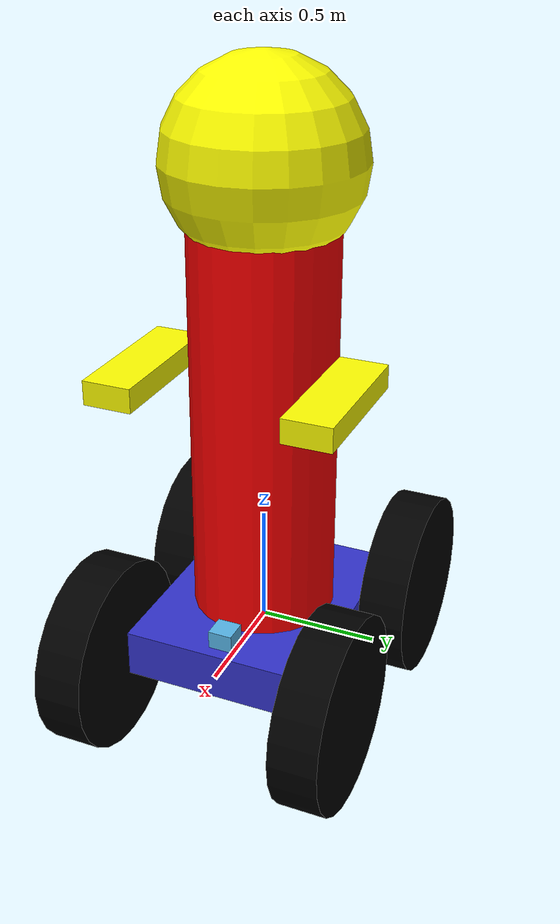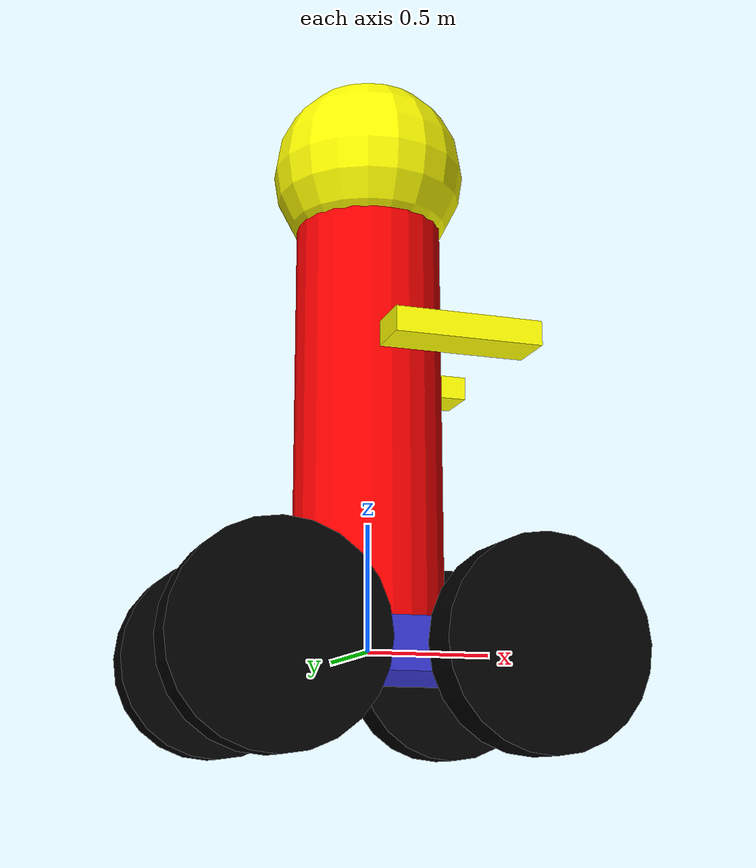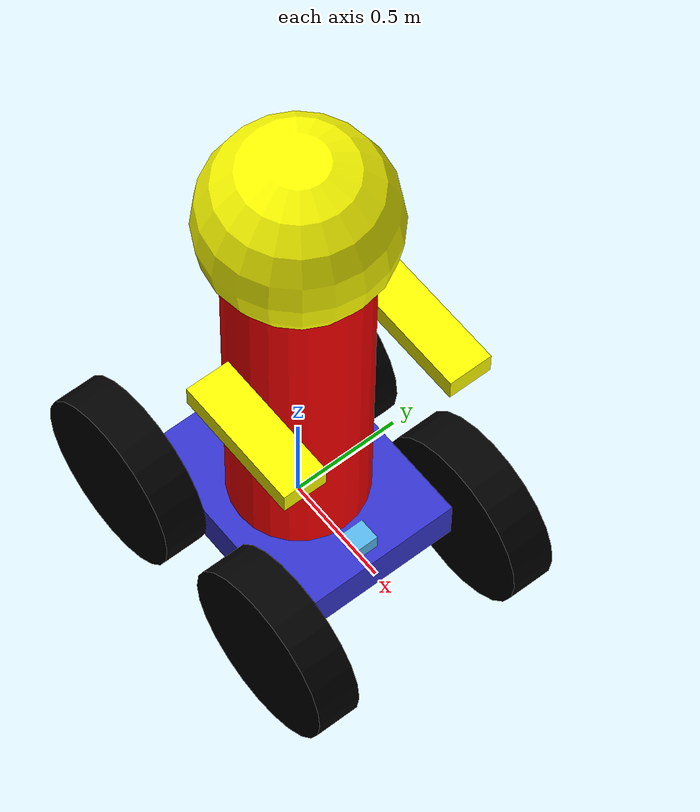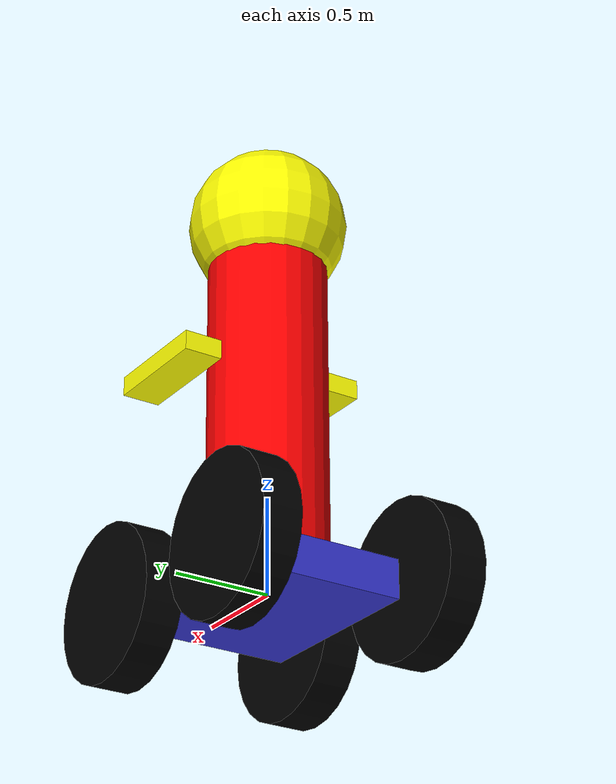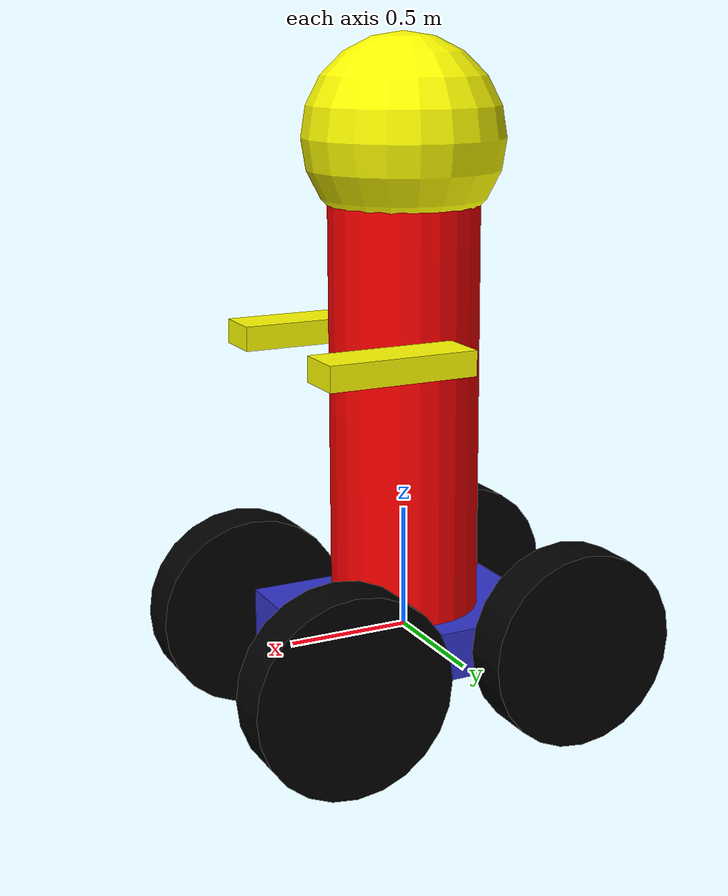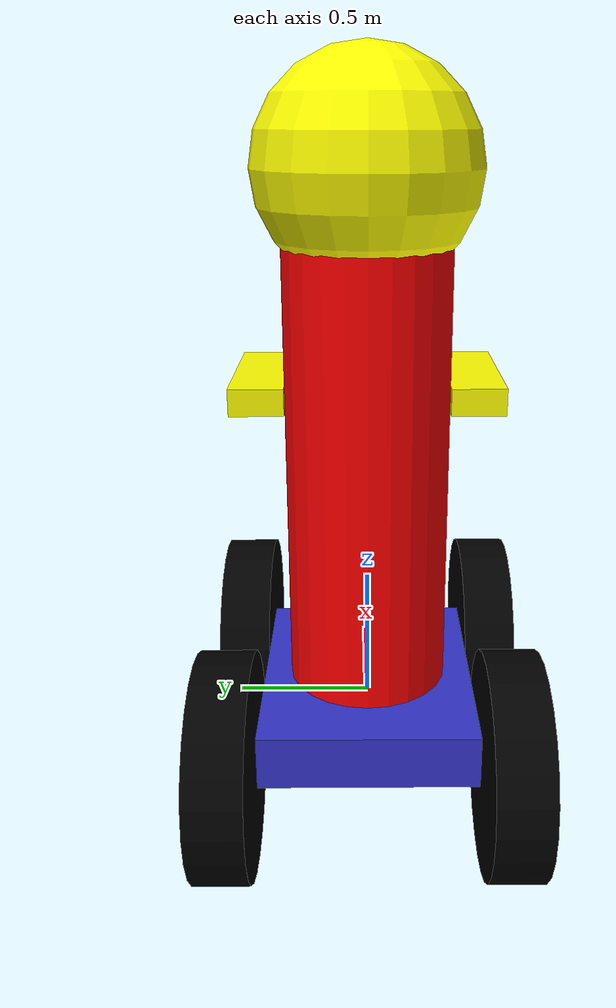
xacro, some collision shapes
<robot name="robot_hanchenhao" xmlns:xacro="http://www.ros.org/wiki/xacro">

  <xacro:property name="PI" value="3.1415926535897931"/>
  <xacro:property name="height3" value="0.15" /> <!-- Link 3 -->
  <xacro:property name="axel_offset" value="0.05" /> <!-- Space btw top of beam and the each joint -->
  <xacro:property name="update_rate" value="20" />
  <!-- Import all Gazebo-customization elements, including Gazebo colors -->
  <xacro:include filename="$(find gazebo_ros_my_robot_description)/urdf/my_robot_plugin.gazebo" />

  <link name="base_link">

    <collision>
      <geometry>
        <box size="1.0 0.8 0.2"/>
      </geometry>
    </collision>

    <visual>
      <geometry>
        <box size="1.0 0.8 0.2"/>
      </geometry>
      <material name="darkblue">
        <color rgba=".2 .2 .8 1"/>
      </material>
    </visual>

    <inertial>
      <mass value="1"/>
      <inertia
        ixx="1.0" ixy="0.0" ixz="0.0"
        iyy="1.0" iyz="0.0"
        izz="1.0"/>
    </inertial>

  </link>

  <gazebo reference="base_link">
    <material>Gazebo/Blue</material>
  </gazebo>

  <link name="body_link">

    <collision>
      <geometry>
        <cylinder length="1.8" radius="0.30"/>
      </geometry>
    </collision>

    <visual>
      <geometry>
        <cylinder length="1.8" radius="0.30"/>
      </geometry>
      <material name="red">
        <color rgba="1 0 0 1"/>
      </material>
    </visual>

    <inertial>
      <mass value="1"/>
      <inertia
        ixx="1.0" ixy="0.0" ixz="0.0"
        iyy="1.0" iyz="0.0"
        izz="1.0"/>
    </inertial>

  </link>

  <gazebo reference="body_link">
    <material>Gazebo/Red</material>
  </gazebo>

  <link name="wheel_left_link">

    <collision>
      <origin xyz="0 0 0" rpy="1.57 0 0" />
      <geometry>
        <cylinder length="0.2" radius="0.40"/>
      </geometry>

      <surface>
      <friction>
                <ode>
                  <mu>0.8</mu>
                  <mu2>0.8</mu2>
                </ode>
              </friction>
      </surface>

    </collision>

    <visual>
      <origin xyz="0 0 0" rpy="1.57 0 0" />
      <geometry>
        <cylinder length="0.2" radius="0.40"/>
      </geometry>
      <material name="black">
        <color rgba="0 0 0 1"/>
      </material>
    </visual>

    <inertial>
      <origin xyz="0 0 0" rpy="1.57 0 0"/>
      <mass value="1"/>
      <inertia
        ixx="1.0" ixy="0.0" ixz="0.0"
        iyy="1.0" iyz="0.0"
        izz="1.0"/>
    </inertial>

  </link>

  <gazebo reference="wheel_left_link">
    <material>Gazebo/Black</material>
  </gazebo>

  <link name="wheel_right_link" >

    <collision>
      <origin xyz="0 0 0" rpy="1.57 0 0" />
      <geometry>
        <cylinder length="0.2" radius="0.40"/>
      </geometry>

      <surface>
      <friction>
                <ode>
                  <mu>0.8</mu>
                  <mu2>0.8</mu2>
                </ode>
              </friction>
      </surface>

    </collision>

    <visual>
      <origin xyz="0 0 0" rpy="1.57 0 0" />
      <geometry>
        <cylinder length="0.2" radius="0.40"/>
      </geometry>
      <material name="black">
        <color rgba="0 0 0 1"/>
      </material>
    </visual>

    <inertial>
      <origin xyz="0 0 0" rpy="1.57 0 0"/>
      <mass value="1"/>
      <inertia
        ixx="1.0" ixy="0.0" ixz="0.0"
        iyy="1.0" iyz="0.0"
        izz="1.0"/>
    </inertial>

  </link>

  <gazebo reference="wheel_right_link">
    <material>Gazebo/Black</material>
  </gazebo>

    <gazebo reference="body_link">
    <material>Gazebo/Red</material>
  </gazebo>

  <link name="bwheel_left_link">

    <collision>
      <origin xyz="0 0 0" rpy="1.57 0 0" />
      <geometry>
        <cylinder length="0.2" radius="0.40"/>
      </geometry>

      <surface>
      <friction>
                <ode>
                  <mu>0.8</mu>
                  <mu2>0.8</mu2>
                </ode>
              </friction>
      </surface>

    </collision>

    <visual>
      <origin xyz="0 0 0" rpy="1.57 0 0" />
      <geometry>
        <cylinder length="0.2" radius="0.40"/>
      </geometry>
      <material name="black">
        <color rgba="0 0 0 1"/>
      </material>
    </visual>

    <inertial>
      <origin xyz="0 0 0" rpy="1.57 0 0"/>
      <mass value="1"/>
      <inertia
        ixx="1.0" ixy="0.0" ixz="0.0"
        iyy="1.0" iyz="0.0"
        izz="1.0"/>
    </inertial>

  </link>

  <gazebo reference="bwheel_left_link">
    <material>Gazebo/Black</material>
  </gazebo>

  <link name="bwheel_right_link" >

    <collision>
      <origin xyz="0 0 0" rpy="1.57 0 0" />
      <geometry>
        <cylinder length="0.2" radius="0.40"/>
      </geometry>

      <surface>
      <friction>
                <ode>
                  <mu>0.8</mu>
                  <mu2>0.8</mu2>
                </ode>
              </friction>
      </surface>

    </collision>

    <visual>
      <origin xyz="0 0 0" rpy="1.57 0 0" />
      <geometry>
        <cylinder length="0.2" radius="0.40"/>
      </geometry>
      <material name="black">
        <color rgba="0 0 0 1"/>
      </material>
    </visual>

    <inertial>
      <origin xyz="0 0 0" rpy="1.57 0 0"/>
      <mass value="1"/>
      <inertia
        ixx="1.0" ixy="0.0" ixz="0.0"
        iyy="1.0" iyz="0.0"
        izz="1.0"/>
    </inertial>

  </link>

  <gazebo reference="bwheel_right_link">
    <material>Gazebo/Black</material>
  </gazebo>

  <link name="hand_left_link" >

    <collision>
      <origin xyz="0.25 -0.1 0" rpy="0 1.57 0" />
      <geometry>
        <box size="0.1 0.2 0.6"/>
      </geometry>
    </collision>

    <visual>
      <origin xyz="0.25 -0.1 0" rpy="0 1.57 0" />
      <geometry>
        <box size="0.1 0.2 0.6"/>
      </geometry>
      <material name="yellow">
        <color rgba="1 1 0 1"/>
      </material>
    </visual>

    <inertial>
      <origin xyz="0.25 -0.1 0" rpy="0 1.57 0" />
      <mass value="1"/>
      <inertia
        ixx="1.0" ixy="0.0" ixz="0.0"
        iyy="1.0" iyz="0.0"
        izz="1.0"/>
    </inertial>

  </link>

  <gazebo reference="hand_left_link">
    <material>Gazebo/Yellow</material>
  </gazebo>

  <link name="hand_right_link">

    <collision>
      <origin xyz="0.25 0.1 0" rpy="0 1.57 0" />
      <geometry>
        <box size="0.1 0.2 0.6"/>
      </geometry>
    </collision>

    <visual>
      <origin xyz="0.25 0.1 0" rpy="0 1.57 0" />
      <geometry>
        <box size="0.1 0.2 0.6"/>
      </geometry>
      <material name="yellow">
        <color rgba="1 1 0 1"/>
      </material>
    </visual>

    <inertial>
      <origin xyz="0.25 0.1 0" rpy="0 1.57 0" />
      <mass value="1"/>
      <inertia
        ixx="1.0" ixy="0.0" ixz="0.0"
        iyy="1.0" iyz="0.0"
        izz="1.0"/>
    </inertial>

  </link>

  <gazebo reference="hand_right_link">
    <material>Gazebo/Yellow</material>
  </gazebo>

  <link name="head_link">

    <collision>
      <geometry>
        <sphere radius="0.4"/>
      </geometry>
    </collision>

    <visual>
      <geometry>
        <sphere radius="0.4"/>
      </geometry>
      <material name="yellow">
        <color rgba="1 1 0 1"/>
      </material>
    </visual>

    <inertial>
      <mass value="1"/>
      <inertia
        ixx="1.0" ixy="0.0" ixz="0.0"
        iyy="1.0" iyz="0.0"
        izz="1.0"/>
    </inertial>

  </link>

   <!-- Hokuyo Laser -->
  <link name="hokuyo_link">
    <collision>
      <origin xyz="0 0 0" rpy="0 0 0"/>
      <geometry>
    <box size="0.1 0.1 0.1"/>
      </geometry>
    </collision>

    <visual>
      <origin xyz="0 0 0" rpy="0 0 0"/>
      <geometry>
         <mesh filename="package://gazebo_ros_my_robot_description/meshes/hokuyo.dae"/>
      </geometry>
    </visual>

    <inertial>
      <mass value="1e-5" />
      <origin xyz="0 0 0" rpy="0 0 0"/>
      <inertia ixx="1e-6" ixy="0" ixz="0" iyy="1e-6" iyz="0" izz="1e-6" />
    </inertial>
  </link>

  <gazebo reference="head_link">
    <material>Gazebo/Yellow</material>
  </gazebo>

  <joint name="joint_left_wheel" type="continuous">
    <parent link="base_link"/>
    <child link="wheel_left_link"/>
    <origin xyz="0.5 0.5 0" rpy="0 0 0" />
    <axis xyz="0 1 0"/>
    <dynamics damping="0.7" friction="0.0"/>
  </joint>

  <joint name="joint_right_wheel" type="continuous">
    <parent link="base_link"/>
    <child link="wheel_right_link"/>
    <origin xyz="0.5 -0.5 0" rpy="0 0 0" />
    <axis xyz="0 1 0"/>
    <dynamics damping="0.7" friction="0.0"/>
  </joint>

    <joint name="joint_left_bwheel" type="continuous">
    <parent link="base_link"/>
    <child link="bwheel_left_link"/>
    <origin xyz="-0.5 0.5 0" rpy="0 0 0" />
    <axis xyz="0 1 0"/>
    <dynamics damping="0.7" friction="0.0"/>
  </joint>

  <joint name="joint_right_bwheel" type="continuous">
    <parent link="base_link"/>
    <child link="bwheel_right_link"/>
    <origin xyz="-0.5 -0.5 0" rpy="0 0 0" />
    <axis xyz="0 -1 0"/>
    <dynamics damping="0.7" friction="0.0"/>
  </joint>

  <joint name="joint_base" type="fixed">
    <parent link="base_link"/>
    <child link="body_link"/>
    <origin xyz="0 0 1" rpy="0 0 0" />
  </joint>

  <joint name="joint_left_hand" type="continuous">
    <parent link="body_link"/>
    <child link="hand_left_link"/>
    <origin xyz="0 0.5 0.2" rpy="0 0 0" />
    <axis xyz="0 1 0"/>
    <dynamics damping="0.7" friction="0.0"/>
  </joint>

  <joint name="joint_right_hand" type="continuous">
    <parent link="body_link"/>
    <child link="hand_right_link"/>
    <origin xyz="0 -0.5 0.2" rpy="0 0 0" />
    <axis xyz="0 -1 0"/>
    <dynamics damping="0.7" friction="0.0"/>
  </joint>

  <joint name="joint_head" type="prismatic">
    <parent link="body_link"/>
    <child link="head_link"/>
    <limit effort="10" lower="-0.1" upper="0.1" velocity="10"/>
    <origin xyz="0 0 1" rpy="0 0 0" />
    <axis xyz="0 0 1"/>
    <dynamics damping="0.7" friction="0.0"/>
  </joint>

  <joint name="hokuyo_joint" type="fixed">
    <axis xyz="0 1 0" />
    <origin xyz="0.4 0 ${height3 - axel_offset/2}" rpy="0 0 0"/>
    <parent link="base_link"/>
    <child link="hokuyo_link"/>
  </joint>

  <transmission name="tran1">
    <type>transmission_interface/SimpleTransmission</type>
    <joint name="joint_left_hand"/>
    <actuator name="motor1">
      <hardwareInterface>EffortJointInterface</hardwareInterface>
      <mechanicalReduction>1</mechanicalReduction>
    </actuator>
  </transmission>

  <transmission name="tran2">
    <type>transmission_interface/SimpleTransmission</type>
    <joint name="joint_right_hand"/>
    <actuator name="motor2">
      <hardwareInterface>EffortJointInterface</hardwareInterface>
      <mechanicalReduction>1</mechanicalReduction>
    </actuator>
  </transmission>

</robot>
